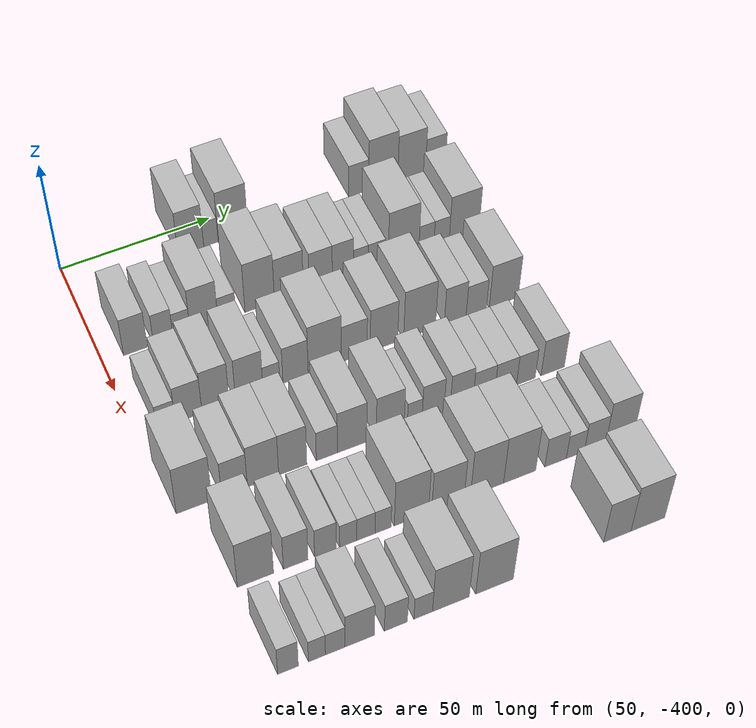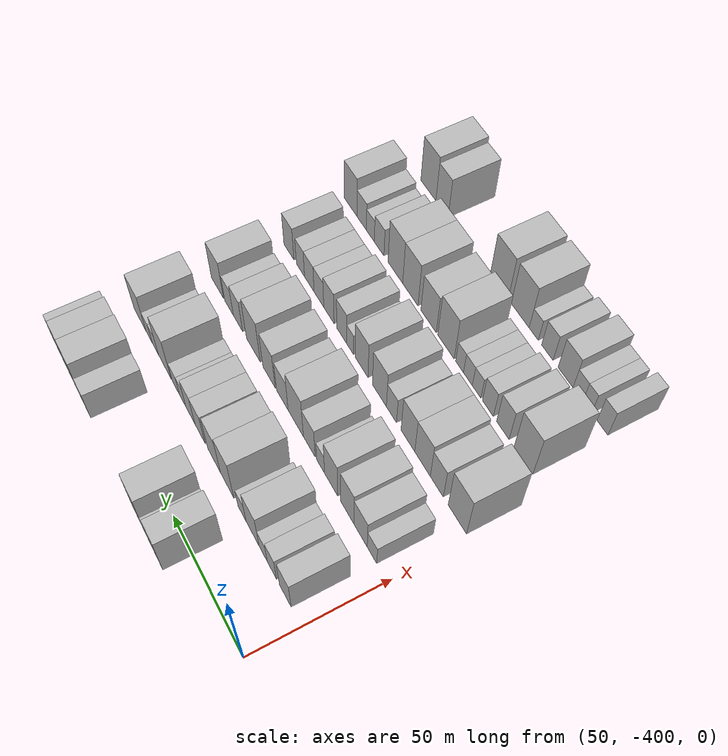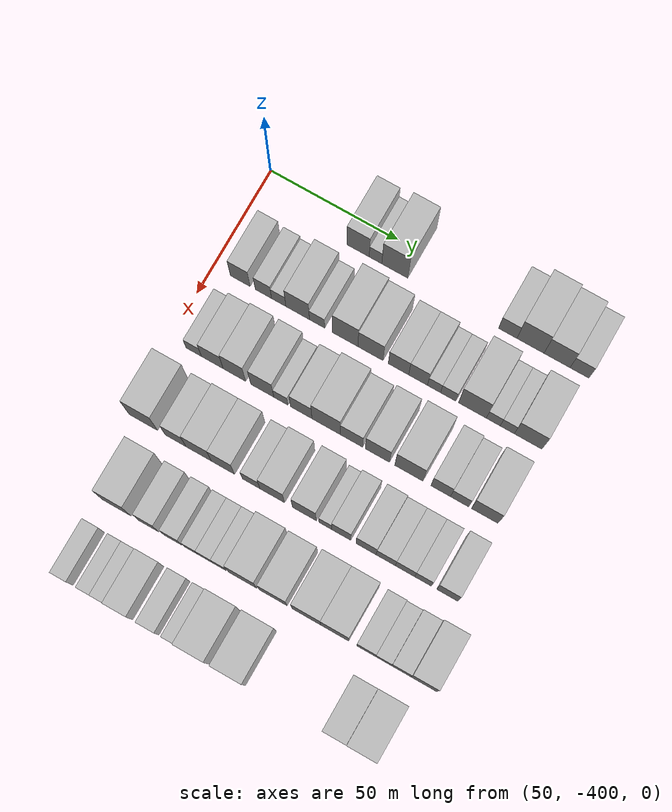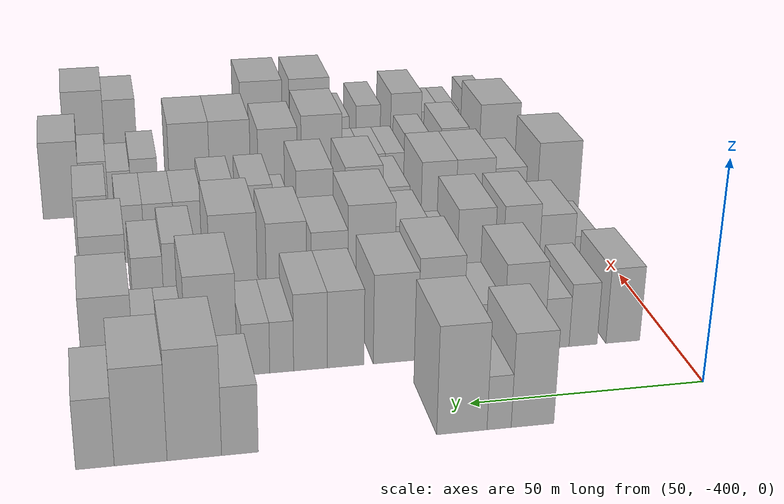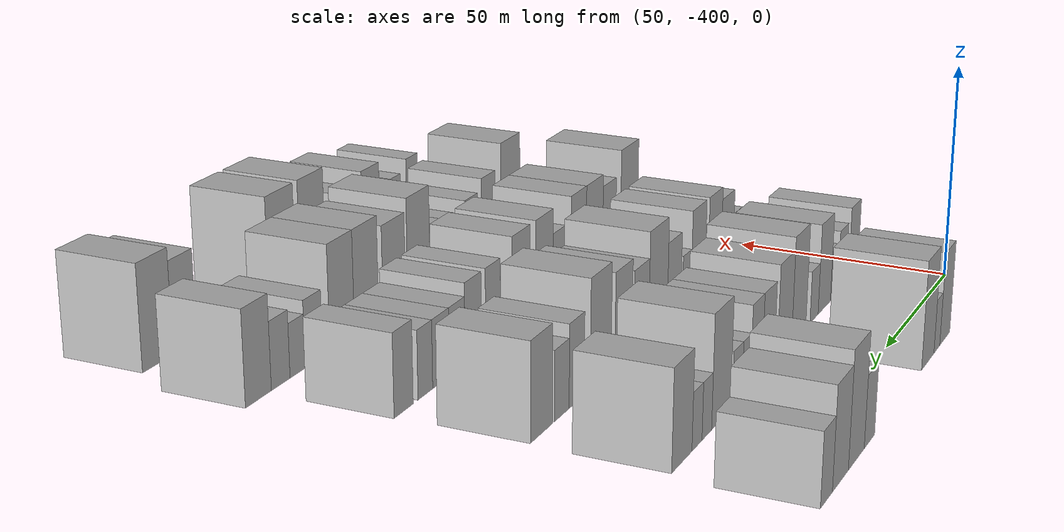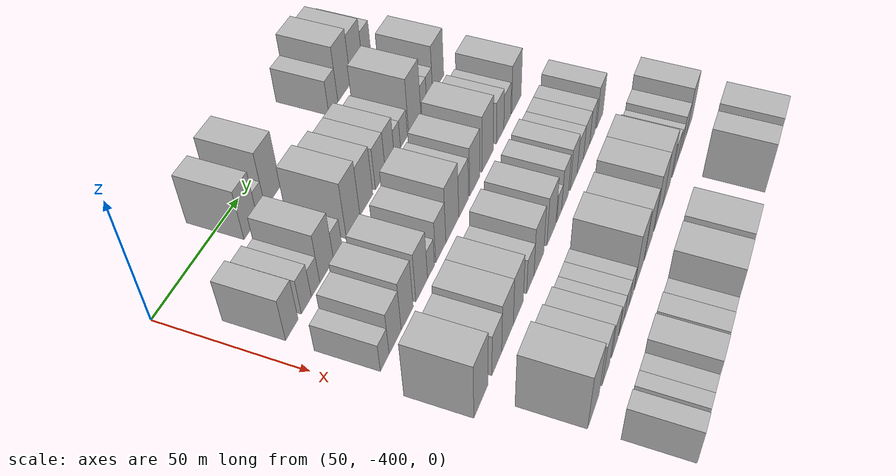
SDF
<sdf version="1.6">
 <world name="default">
  <model name="building_10">
   <static>1</static>
   <pose>50.0000 -360.0876 0 0.000000 0.000000 0.000000</pose>
   <link name="link">
    <pose>0 0 10.50 0 0 0</pose>
    <collision name="collision"><geometry><box><size>20.0000 8.7197 21.0000</size></box></geometry></collision>
    <visual name="visual">
     <cast_shadows>0</cast_shadows>
     <geometry><box><size>20.0000 8.7197 21.0000</size></box></geometry>
     <material>
      <script>
       <uri>model://HANNAS_wall/materials/scripts</uri>
       <uri>model://HANNAS_wall/materials/textures</uri>
       <name>vrc/HANNAS_wall</name>
      </script>
     </material>
    </visual>
   </link>
  </model>
  <model name="building_11">
   <static>1</static>
   <pose>50.0000 -353.2707 0 0.000000 0.000000 0.000000</pose>
   <link name="link">
    <pose>0 0 6.00 0 0 0</pose>
    <collision name="collision"><geometry><box><size>20.0000 4.9139 12.0000</size></box></geometry></collision>
    <visual name="visual">
     <cast_shadows>0</cast_shadows>
     <geometry><box><size>20.0000 4.9139 12.0000</size></box></geometry>
     <material>
      <script>
       <uri>model://HANNAS_wall/materials/scripts</uri>
       <uri>model://HANNAS_wall/materials/textures</uri>
       <name>vrc/HANNAS_wall</name>
      </script>
     </material>
    </visual>
   </link>
  </model>
  <model name="building_12">
   <static>1</static>
   <pose>50.0000 -345.7462 0 0.000000 0.000000 0.000000</pose>
   <link name="link">
    <pose>0 0 12.00 0 0 0</pose>
    <collision name="collision"><geometry><box><size>20.0000 10.1351 24.0000</size></box></geometry></collision>
    <visual name="visual">
     <cast_shadows>0</cast_shadows>
     <geometry><box><size>20.0000 10.1351 24.0000</size></box></geometry>
     <material>
      <script>
       <uri>model://HANNAS_wall/materials/scripts</uri>
       <uri>model://HANNAS_wall/materials/textures</uri>
       <name>vrc/HANNAS_wall</name>
      </script>
     </material>
    </visual>
   </link>
  </model>
  <model name="building_13">
   <static>1</static>
   <pose>50.0000 -302.0954 0 0.000000 0.000000 0.000000</pose>
   <link name="link">
    <pose>0 0 7.50 0 0 0</pose>
    <collision name="collision"><geometry><box><size>20.0000 7.0555 15.0000</size></box></geometry></collision>
    <visual name="visual">
     <cast_shadows>0</cast_shadows>
     <geometry><box><size>20.0000 7.0555 15.0000</size></box></geometry>
     <material>
      <script>
       <uri>model://HANNAS_wall/materials/scripts</uri>
       <uri>model://HANNAS_wall/materials/textures</uri>
       <name>vrc/HANNAS_wall</name>
      </script>
     </material>
    </visual>
   </link>
  </model>
  <model name="building_14">
   <static>1</static>
   <pose>50.0000 -293.3849 0 0.000000 0.000000 0.000000</pose>
   <link name="link">
    <pose>0 0 12.00 0 0 0</pose>
    <collision name="collision"><geometry><box><size>20.0000 10.3654 24.0000</size></box></geometry></collision>
    <visual name="visual">
     <cast_shadows>0</cast_shadows>
     <geometry><box><size>20.0000 10.3654 24.0000</size></box></geometry>
     <material>
      <script>
       <uri>model://HANNAS_wall/materials/scripts</uri>
       <uri>model://HANNAS_wall/materials/textures</uri>
       <name>vrc/HANNAS_wall</name>
      </script>
     </material>
    </visual>
   </link>
  </model>
  <model name="building_15">
   <static>1</static>
   <pose>50.0000 -283.2287 0 0.000000 0.000000 0.000000</pose>
   <link name="link">
    <pose>0 0 10.50 0 0 0</pose>
    <collision name="collision"><geometry><box><size>20.0000 9.9471 21.0000</size></box></geometry></collision>
    <visual name="visual">
     <cast_shadows>0</cast_shadows>
     <geometry><box><size>20.0000 9.9471 21.0000</size></box></geometry>
     <material>
      <script>
       <uri>model://HANNAS_wall/materials/scripts</uri>
       <uri>model://HANNAS_wall/materials/textures</uri>
       <name>vrc/HANNAS_wall</name>
      </script>
     </material>
    </visual>
   </link>
  </model>
  <model name="building_16">
   <static>1</static>
   <pose>50.0000 -274.6540 0 0.000000 0.000000 0.000000</pose>
   <link name="link">
    <pose>0 0 7.50 0 0 0</pose>
    <collision name="collision"><geometry><box><size>20.0000 7.2023 15.0000</size></box></geometry></collision>
    <visual name="visual">
     <cast_shadows>0</cast_shadows>
     <geometry><box><size>20.0000 7.2023 15.0000</size></box></geometry>
     <material>
      <script>
       <uri>model://HANNAS_wall/materials/scripts</uri>
       <uri>model://HANNAS_wall/materials/textures</uri>
       <name>vrc/HANNAS_wall</name>
      </script>
     </material>
    </visual>
   </link>
  </model>
  <model name="building_108">
   <static>1</static>
   <pose>79.0000 -389.3710 0 0.000000 0.000000 0.000000</pose>
   <link name="link">
    <pose>0 0 9.00 0 0 0</pose>
    <collision name="collision"><geometry><box><size>20.0000 7.7183 18.0000</size></box></geometry></collision>
    <visual name="visual">
     <cast_shadows>0</cast_shadows>
     <geometry><box><size>20.0000 7.7183 18.0000</size></box></geometry>
     <material>
      <script>
       <uri>model://HANNAS_wall/materials/scripts</uri>
       <uri>model://HANNAS_wall/materials/textures</uri>
       <name>vrc/HANNAS_wall</name>
      </script>
     </material>
    </visual>
   </link>
  </model>
  <model name="building_109">
   <static>1</static>
   <pose>79.0000 -380.3362 0 0.000000 0.000000 0.000000</pose>
   <link name="link">
    <pose>0 0 7.50 0 0 0</pose>
    <collision name="collision"><geometry><box><size>20.0000 6.3512 15.0000</size></box></geometry></collision>
    <visual name="visual">
     <cast_shadows>0</cast_shadows>
     <geometry><box><size>20.0000 6.3512 15.0000</size></box></geometry>
     <material>
      <script>
       <uri>model://HANNAS_wall/materials/scripts</uri>
       <uri>model://HANNAS_wall/materials/textures</uri>
       <name>vrc/HANNAS_wall</name>
      </script>
     </material>
    </visual>
   </link>
  </model>
  <model name="building_110">
   <static>1</static>
   <pose>79.0000 -374.3742 0 0.000000 0.000000 0.000000</pose>
   <link name="link">
    <pose>0 0 6.00 0 0 0</pose>
    <collision name="collision"><geometry><box><size>20.0000 5.5727 12.0000</size></box></geometry></collision>
    <visual name="visual">
     <cast_shadows>0</cast_shadows>
     <geometry><box><size>20.0000 5.5727 12.0000</size></box></geometry>
     <material>
      <script>
       <uri>model://HANNAS_wall/materials/scripts</uri>
       <uri>model://HANNAS_wall/materials/textures</uri>
       <name>vrc/HANNAS_wall</name>
      </script>
     </material>
    </visual>
   </link>
  </model>
  <model name="building_111">
   <static>1</static>
   <pose>79.0000 -366.9922 0 0.000000 0.000000 0.000000</pose>
   <link name="link">
    <pose>0 0 10.50 0 0 0</pose>
    <collision name="collision"><geometry><box><size>20.0000 9.1913 21.0000</size></box></geometry></collision>
    <visual name="visual">
     <cast_shadows>0</cast_shadows>
     <geometry><box><size>20.0000 9.1913 21.0000</size></box></geometry>
     <material>
      <script>
       <uri>model://HANNAS_wall/materials/scripts</uri>
       <uri>model://HANNAS_wall/materials/textures</uri>
       <name>vrc/HANNAS_wall</name>
      </script>
     </material>
    </visual>
   </link>
  </model>
  <model name="building_112">
   <static>1</static>
   <pose>79.0000 -359.4366 0 0.000000 0.000000 0.000000</pose>
   <link name="link">
    <pose>0 0 6.00 0 0 0</pose>
    <collision name="collision"><geometry><box><size>20.0000 5.9201 12.0000</size></box></geometry></collision>
    <visual name="visual">
     <cast_shadows>0</cast_shadows>
     <geometry><box><size>20.0000 5.9201 12.0000</size></box></geometry>
     <material>
      <script>
       <uri>model://HANNAS_wall/materials/scripts</uri>
       <uri>model://HANNAS_wall/materials/textures</uri>
       <name>vrc/HANNAS_wall</name>
      </script>
     </material>
    </visual>
   </link>
  </model>
  <model name="building_113">
   <static>1</static>
   <pose>79.0000 -348.5449 0 0.000000 0.000000 0.000000</pose>
   <link name="link">
    <pose>0 0 12.00 0 0 0</pose>
    <collision name="collision"><geometry><box><size>20.0000 9.8631 24.0000</size></box></geometry></collision>
    <visual name="visual">
     <cast_shadows>0</cast_shadows>
     <geometry><box><size>20.0000 9.8631 24.0000</size></box></geometry>
     <material>
      <script>
       <uri>model://HANNAS_wall/materials/scripts</uri>
       <uri>model://HANNAS_wall/materials/textures</uri>
       <name>vrc/HANNAS_wall</name>
      </script>
     </material>
    </visual>
   </link>
  </model>
  <model name="building_114">
   <static>1</static>
   <pose>79.0000 -338.7655 0 0.000000 0.000000 0.000000</pose>
   <link name="link">
    <pose>0 0 10.50 0 0 0</pose>
    <collision name="collision"><geometry><box><size>20.0000 9.6957 21.0000</size></box></geometry></collision>
    <visual name="visual">
     <cast_shadows>0</cast_shadows>
     <geometry><box><size>20.0000 9.6957 21.0000</size></box></geometry>
     <material>
      <script>
       <uri>model://HANNAS_wall/materials/scripts</uri>
       <uri>model://HANNAS_wall/materials/textures</uri>
       <name>vrc/HANNAS_wall</name>
      </script>
     </material>
    </visual>
   </link>
  </model>
  <model name="building_115">
   <static>1</static>
   <pose>79.0000 -327.9931 0 0.000000 0.000000 0.000000</pose>
   <link name="link">
    <pose>0 0 9.00 0 0 0</pose>
    <collision name="collision"><geometry><box><size>20.0000 7.8491 18.0000</size></box></geometry></collision>
    <visual name="visual">
     <cast_shadows>0</cast_shadows>
     <geometry><box><size>20.0000 7.8491 18.0000</size></box></geometry>
     <material>
      <script>
       <uri>model://HANNAS_wall/materials/scripts</uri>
       <uri>model://HANNAS_wall/materials/textures</uri>
       <name>vrc/HANNAS_wall</name>
      </script>
     </material>
    </visual>
   </link>
  </model>
  <model name="building_116">
   <static>1</static>
   <pose>79.0000 -320.4559 0 0.000000 0.000000 0.000000</pose>
   <link name="link">
    <pose>0 0 9.00 0 0 0</pose>
    <collision name="collision"><geometry><box><size>20.0000 7.2254 18.0000</size></box></geometry></collision>
    <visual name="visual">
     <cast_shadows>0</cast_shadows>
     <geometry><box><size>20.0000 7.2254 18.0000</size></box></geometry>
     <material>
      <script>
       <uri>model://HANNAS_wall/materials/scripts</uri>
       <uri>model://HANNAS_wall/materials/textures</uri>
       <name>vrc/HANNAS_wall</name>
      </script>
     </material>
    </visual>
   </link>
  </model>
  <model name="building_117">
   <static>1</static>
   <pose>79.0000 -314.3213 0 0.000000 0.000000 0.000000</pose>
   <link name="link">
    <pose>0 0 6.00 0 0 0</pose>
    <collision name="collision"><geometry><box><size>20.0000 5.0439 12.0000</size></box></geometry></collision>
    <visual name="visual">
     <cast_shadows>0</cast_shadows>
     <geometry><box><size>20.0000 5.0439 12.0000</size></box></geometry>
     <material>
      <script>
       <uri>model://HANNAS_wall/materials/scripts</uri>
       <uri>model://HANNAS_wall/materials/textures</uri>
       <name>vrc/HANNAS_wall</name>
      </script>
     </material>
    </visual>
   </link>
  </model>
  <model name="building_118">
   <static>1</static>
   <pose>79.0000 -308.8775 0 0.000000 0.000000 0.000000</pose>
   <link name="link">
    <pose>0 0 6.00 0 0 0</pose>
    <collision name="collision"><geometry><box><size>20.0000 5.8438 12.0000</size></box></geometry></collision>
    <visual name="visual">
     <cast_shadows>0</cast_shadows>
     <geometry><box><size>20.0000 5.8438 12.0000</size></box></geometry>
     <material>
      <script>
       <uri>model://HANNAS_wall/materials/scripts</uri>
       <uri>model://HANNAS_wall/materials/textures</uri>
       <name>vrc/HANNAS_wall</name>
      </script>
     </material>
    </visual>
   </link>
  </model>
  <model name="building_119">
   <static>1</static>
   <pose>79.0000 -299.6308 0 0.000000 0.000000 0.000000</pose>
   <link name="link">
    <pose>0 0 12.00 0 0 0</pose>
    <collision name="collision"><geometry><box><size>20.0000 10.6496 24.0000</size></box></geometry></collision>
    <visual name="visual">
     <cast_shadows>0</cast_shadows>
     <geometry><box><size>20.0000 10.6496 24.0000</size></box></geometry>
     <material>
      <script>
       <uri>model://HANNAS_wall/materials/scripts</uri>
       <uri>model://HANNAS_wall/materials/textures</uri>
       <name>vrc/HANNAS_wall</name>
      </script>
     </material>
    </visual>
   </link>
  </model>
  <model name="building_120">
   <static>1</static>
   <pose>79.0000 -291.6665 0 0.000000 0.000000 0.000000</pose>
   <link name="link">
    <pose>0 0 6.00 0 0 0</pose>
    <collision name="collision"><geometry><box><size>20.0000 5.2791 12.0000</size></box></geometry></collision>
    <visual name="visual">
     <cast_shadows>0</cast_shadows>
     <geometry><box><size>20.0000 5.2791 12.0000</size></box></geometry>
     <material>
      <script>
       <uri>model://HANNAS_wall/materials/scripts</uri>
       <uri>model://HANNAS_wall/materials/textures</uri>
       <name>vrc/HANNAS_wall</name>
      </script>
     </material>
    </visual>
   </link>
  </model>
  <model name="building_121">
   <static>1</static>
   <pose>79.0000 -286.3384 0 0.000000 0.000000 0.000000</pose>
   <link name="link">
    <pose>0 0 6.00 0 0 0</pose>
    <collision name="collision"><geometry><box><size>20.0000 5.3769 12.0000</size></box></geometry></collision>
    <visual name="visual">
     <cast_shadows>0</cast_shadows>
     <geometry><box><size>20.0000 5.3769 12.0000</size></box></geometry>
     <material>
      <script>
       <uri>model://HANNAS_wall/materials/scripts</uri>
       <uri>model://HANNAS_wall/materials/textures</uri>
       <name>vrc/HANNAS_wall</name>
      </script>
     </material>
    </visual>
   </link>
  </model>
  <model name="building_122">
   <static>1</static>
   <pose>79.0000 -278.4130 0 0.000000 0.000000 0.000000</pose>
   <link name="link">
    <pose>0 0 10.50 0 0 0</pose>
    <collision name="collision"><geometry><box><size>20.0000 10.4740 21.0000</size></box></geometry></collision>
    <visual name="visual">
     <cast_shadows>0</cast_shadows>
     <geometry><box><size>20.0000 10.4740 21.0000</size></box></geometry>
     <material>
      <script>
       <uri>model://HANNAS_wall/materials/scripts</uri>
       <uri>model://HANNAS_wall/materials/textures</uri>
       <name>vrc/HANNAS_wall</name>
      </script>
     </material>
    </visual>
   </link>
  </model>
  <model name="building_225">
   <static>1</static>
   <pose>108.0000 -390.5044 0 0.000000 0.000000 0.000000</pose>
   <link name="link">
    <pose>0 0 6.00 0 0 0</pose>
    <collision name="collision"><geometry><box><size>20.0000 5.9755 12.0000</size></box></geometry></collision>
    <visual name="visual">
     <cast_shadows>0</cast_shadows>
     <geometry><box><size>20.0000 5.9755 12.0000</size></box></geometry>
     <material>
      <script>
       <uri>model://HANNAS_wall/materials/scripts</uri>
       <uri>model://HANNAS_wall/materials/textures</uri>
       <name>vrc/HANNAS_wall</name>
      </script>
     </material>
    </visual>
   </link>
  </model>
  <model name="building_226">
   <static>1</static>
   <pose>108.0000 -383.2787 0 0.000000 0.000000 0.000000</pose>
   <link name="link">
    <pose>0 0 9.00 0 0 0</pose>
    <collision name="collision"><geometry><box><size>20.0000 8.4758 18.0000</size></box></geometry></collision>
    <visual name="visual">
     <cast_shadows>0</cast_shadows>
     <geometry><box><size>20.0000 8.4758 18.0000</size></box></geometry>
     <material>
      <script>
       <uri>model://HANNAS_wall/materials/scripts</uri>
       <uri>model://HANNAS_wall/materials/textures</uri>
       <name>vrc/HANNAS_wall</name>
      </script>
     </material>
    </visual>
   </link>
  </model>
  <model name="building_227">
   <static>1</static>
   <pose>108.0000 -374.6864 0 0.000000 0.000000 0.000000</pose>
   <link name="link">
    <pose>0 0 10.50 0 0 0</pose>
    <collision name="collision"><geometry><box><size>20.0000 8.7089 21.0000</size></box></geometry></collision>
    <visual name="visual">
     <cast_shadows>0</cast_shadows>
     <geometry><box><size>20.0000 8.7089 21.0000</size></box></geometry>
     <material>
      <script>
       <uri>model://HANNAS_wall/materials/scripts</uri>
       <uri>model://HANNAS_wall/materials/textures</uri>
       <name>vrc/HANNAS_wall</name>
      </script>
     </material>
    </visual>
   </link>
  </model>
  <model name="building_228">
   <static>1</static>
   <pose>108.0000 -363.8888 0 0.000000 0.000000 0.000000</pose>
   <link name="link">
    <pose>0 0 10.50 0 0 0</pose>
    <collision name="collision"><geometry><box><size>20.0000 8.8863 21.0000</size></box></geometry></collision>
    <visual name="visual">
     <cast_shadows>0</cast_shadows>
     <geometry><box><size>20.0000 8.8863 21.0000</size></box></geometry>
     <material>
      <script>
       <uri>model://HANNAS_wall/materials/scripts</uri>
       <uri>model://HANNAS_wall/materials/textures</uri>
       <name>vrc/HANNAS_wall</name>
      </script>
     </material>
    </visual>
   </link>
  </model>
  <model name="building_229">
   <static>1</static>
   <pose>108.0000 -356.7248 0 0.000000 0.000000 0.000000</pose>
   <link name="link">
    <pose>0 0 6.00 0 0 0</pose>
    <collision name="collision"><geometry><box><size>20.0000 5.4416 12.0000</size></box></geometry></collision>
    <visual name="visual">
     <cast_shadows>0</cast_shadows>
     <geometry><box><size>20.0000 5.4416 12.0000</size></box></geometry>
     <material>
      <script>
       <uri>model://HANNAS_wall/materials/scripts</uri>
       <uri>model://HANNAS_wall/materials/textures</uri>
       <name>vrc/HANNAS_wall</name>
      </script>
     </material>
    </visual>
   </link>
  </model>
  <model name="building_230">
   <static>1</static>
   <pose>108.0000 -348.8827 0 0.000000 0.000000 0.000000</pose>
   <link name="link">
    <pose>0 0 9.00 0 0 0</pose>
    <collision name="collision"><geometry><box><size>20.0000 8.2425 18.0000</size></box></geometry></collision>
    <visual name="visual">
     <cast_shadows>0</cast_shadows>
     <geometry><box><size>20.0000 8.2425 18.0000</size></box></geometry>
     <material>
      <script>
       <uri>model://HANNAS_wall/materials/scripts</uri>
       <uri>model://HANNAS_wall/materials/textures</uri>
       <name>vrc/HANNAS_wall</name>
      </script>
     </material>
    </visual>
   </link>
  </model>
  <model name="building_231">
   <static>1</static>
   <pose>108.0000 -339.3046 0 0.000000 0.000000 0.000000</pose>
   <link name="link">
    <pose>0 0 12.00 0 0 0</pose>
    <collision name="collision"><geometry><box><size>20.0000 10.9139 24.0000</size></box></geometry></collision>
    <visual name="visual">
     <cast_shadows>0</cast_shadows>
     <geometry><box><size>20.0000 10.9139 24.0000</size></box></geometry>
     <material>
      <script>
       <uri>model://HANNAS_wall/materials/scripts</uri>
       <uri>model://HANNAS_wall/materials/textures</uri>
       <name>vrc/HANNAS_wall</name>
      </script>
     </material>
    </visual>
   </link>
  </model>
  <model name="building_232">
   <static>1</static>
   <pose>108.0000 -329.5757 0 0.000000 0.000000 0.000000</pose>
   <link name="link">
    <pose>0 0 9.00 0 0 0</pose>
    <collision name="collision"><geometry><box><size>20.0000 8.5439 18.0000</size></box></geometry></collision>
    <visual name="visual">
     <cast_shadows>0</cast_shadows>
     <geometry><box><size>20.0000 8.5439 18.0000</size></box></geometry>
     <material>
      <script>
       <uri>model://HANNAS_wall/materials/scripts</uri>
       <uri>model://HANNAS_wall/materials/textures</uri>
       <name>vrc/HANNAS_wall</name>
      </script>
     </material>
    </visual>
   </link>
  </model>
  <model name="building_233">
   <static>1</static>
   <pose>108.0000 -319.6823 0 0.000000 0.000000 0.000000</pose>
   <link name="link">
    <pose>0 0 10.50 0 0 0</pose>
    <collision name="collision"><geometry><box><size>20.0000 9.2429 21.0000</size></box></geometry></collision>
    <visual name="visual">
     <cast_shadows>0</cast_shadows>
     <geometry><box><size>20.0000 9.2429 21.0000</size></box></geometry>
     <material>
      <script>
       <uri>model://HANNAS_wall/materials/scripts</uri>
       <uri>model://HANNAS_wall/materials/textures</uri>
       <name>vrc/HANNAS_wall</name>
      </script>
     </material>
    </visual>
   </link>
  </model>
  <model name="building_234">
   <static>1</static>
   <pose>108.0000 -307.6823 0 0.000000 0.000000 0.000000</pose>
   <link name="link">
    <pose>0 0 12.00 0 0 0</pose>
    <collision name="collision"><geometry><box><size>20.0000 10.7571 24.0000</size></box></geometry></collision>
    <visual name="visual">
     <cast_shadows>0</cast_shadows>
     <geometry><box><size>20.0000 10.7571 24.0000</size></box></geometry>
     <material>
      <script>
       <uri>model://HANNAS_wall/materials/scripts</uri>
       <uri>model://HANNAS_wall/materials/textures</uri>
       <name>vrc/HANNAS_wall</name>
      </script>
     </material>
    </visual>
   </link>
  </model>
  <model name="building_235">
   <static>1</static>
   <pose>108.0000 -295.5895 0 0.000000 0.000000 0.000000</pose>
   <link name="link">
    <pose>0 0 9.00 0 0 0</pose>
    <collision name="collision"><geometry><box><size>20.0000 7.4287 18.0000</size></box></geometry></collision>
    <visual name="visual">
     <cast_shadows>0</cast_shadows>
     <geometry><box><size>20.0000 7.4287 18.0000</size></box></geometry>
     <material>
      <script>
       <uri>model://HANNAS_wall/materials/scripts</uri>
       <uri>model://HANNAS_wall/materials/textures</uri>
       <name>vrc/HANNAS_wall</name>
      </script>
     </material>
    </visual>
   </link>
  </model>
  <model name="building_236">
   <static>1</static>
   <pose>108.0000 -288.4044 0 0.000000 0.000000 0.000000</pose>
   <link name="link">
    <pose>0 0 7.50 0 0 0</pose>
    <collision name="collision"><geometry><box><size>20.0000 6.9413 15.0000</size></box></geometry></collision>
    <visual name="visual">
     <cast_shadows>0</cast_shadows>
     <geometry><box><size>20.0000 6.9413 15.0000</size></box></geometry>
     <material>
      <script>
       <uri>model://HANNAS_wall/materials/scripts</uri>
       <uri>model://HANNAS_wall/materials/textures</uri>
       <name>vrc/HANNAS_wall</name>
      </script>
     </material>
    </visual>
   </link>
  </model>
  <model name="building_237">
   <static>1</static>
   <pose>108.0000 -278.9321 0 0.000000 0.000000 0.000000</pose>
   <link name="link">
    <pose>0 0 10.50 0 0 0</pose>
    <collision name="collision"><geometry><box><size>20.0000 10.0034 21.0000</size></box></geometry></collision>
    <visual name="visual">
     <cast_shadows>0</cast_shadows>
     <geometry><box><size>20.0000 10.0034 21.0000</size></box></geometry>
     <material>
      <script>
       <uri>model://HANNAS_wall/materials/scripts</uri>
       <uri>model://HANNAS_wall/materials/textures</uri>
       <name>vrc/HANNAS_wall</name>
      </script>
     </material>
    </visual>
   </link>
  </model>
  <model name="building_335">
   <static>1</static>
   <pose>137.0000 -392.8796 0 0.000000 0.000000 0.000000</pose>
   <link name="link">
    <pose>0 0 12.00 0 0 0</pose>
    <collision name="collision"><geometry><box><size>20.0000 11.0079 24.0000</size></box></geometry></collision>
    <visual name="visual">
     <cast_shadows>0</cast_shadows>
     <geometry><box><size>20.0000 11.0079 24.0000</size></box></geometry>
     <material>
      <script>
       <uri>model://HANNAS_wall/materials/scripts</uri>
       <uri>model://HANNAS_wall/materials/textures</uri>
       <name>vrc/HANNAS_wall</name>
      </script>
     </material>
    </visual>
   </link>
  </model>
  <model name="building_336">
   <static>1</static>
   <pose>137.0000 -380.3613 0 0.000000 0.000000 0.000000</pose>
   <link name="link">
    <pose>0 0 9.00 0 0 0</pose>
    <collision name="collision"><geometry><box><size>20.0000 8.0287 18.0000</size></box></geometry></collision>
    <visual name="visual">
     <cast_shadows>0</cast_shadows>
     <geometry><box><size>20.0000 8.0287 18.0000</size></box></geometry>
     <material>
      <script>
       <uri>model://HANNAS_wall/materials/scripts</uri>
       <uri>model://HANNAS_wall/materials/textures</uri>
       <name>vrc/HANNAS_wall</name>
      </script>
     </material>
    </visual>
   </link>
  </model>
  <model name="building_337">
   <static>1</static>
   <pose>137.0000 -371.4375 0 0.000000 0.000000 0.000000</pose>
   <link name="link">
    <pose>0 0 10.50 0 0 0</pose>
    <collision name="collision"><geometry><box><size>20.0000 9.8189 21.0000</size></box></geometry></collision>
    <visual name="visual">
     <cast_shadows>0</cast_shadows>
     <geometry><box><size>20.0000 9.8189 21.0000</size></box></geometry>
     <material>
      <script>
       <uri>model://HANNAS_wall/materials/scripts</uri>
       <uri>model://HANNAS_wall/materials/textures</uri>
       <name>vrc/HANNAS_wall</name>
      </script>
     </material>
    </visual>
   </link>
  </model>
  <model name="building_338">
   <static>1</static>
   <pose>137.0000 -362.0858 0 0.000000 0.000000 0.000000</pose>
   <link name="link">
    <pose>0 0 10.50 0 0 0</pose>
    <collision name="collision"><geometry><box><size>20.0000 8.8845 21.0000</size></box></geometry></collision>
    <visual name="visual">
     <cast_shadows>0</cast_shadows>
     <geometry><box><size>20.0000 8.8845 21.0000</size></box></geometry>
     <material>
      <script>
       <uri>model://HANNAS_wall/materials/scripts</uri>
       <uri>model://HANNAS_wall/materials/textures</uri>
       <name>vrc/HANNAS_wall</name>
      </script>
     </material>
    </visual>
   </link>
  </model>
  <model name="building_339">
   <static>1</static>
   <pose>137.0000 -351.2764 0 0.000000 0.000000 0.000000</pose>
   <link name="link">
    <pose>0 0 7.50 0 0 0</pose>
    <collision name="collision"><geometry><box><size>20.0000 6.7343 15.0000</size></box></geometry></collision>
    <visual name="visual">
     <cast_shadows>0</cast_shadows>
     <geometry><box><size>20.0000 6.7343 15.0000</size></box></geometry>
     <material>
      <script>
       <uri>model://HANNAS_wall/materials/scripts</uri>
       <uri>model://HANNAS_wall/materials/textures</uri>
       <name>vrc/HANNAS_wall</name>
      </script>
     </material>
    </visual>
   </link>
  </model>
  <model name="building_340">
   <static>1</static>
   <pose>137.0000 -343.1933 0 0.000000 0.000000 0.000000</pose>
   <link name="link">
    <pose>0 0 10.50 0 0 0</pose>
    <collision name="collision"><geometry><box><size>20.0000 9.4319 21.0000</size></box></geometry></collision>
    <visual name="visual">
     <cast_shadows>0</cast_shadows>
     <geometry><box><size>20.0000 9.4319 21.0000</size></box></geometry>
     <material>
      <script>
       <uri>model://HANNAS_wall/materials/scripts</uri>
       <uri>model://HANNAS_wall/materials/textures</uri>
       <name>vrc/HANNAS_wall</name>
      </script>
     </material>
    </visual>
   </link>
  </model>
  <model name="building_341">
   <static>1</static>
   <pose>137.0000 -330.9318 0 0.000000 0.000000 0.000000</pose>
   <link name="link">
    <pose>0 0 10.50 0 0 0</pose>
    <collision name="collision"><geometry><box><size>20.0000 9.0911 21.0000</size></box></geometry></collision>
    <visual name="visual">
     <cast_shadows>0</cast_shadows>
     <geometry><box><size>20.0000 9.0911 21.0000</size></box></geometry>
     <material>
      <script>
       <uri>model://HANNAS_wall/materials/scripts</uri>
       <uri>model://HANNAS_wall/materials/textures</uri>
       <name>vrc/HANNAS_wall</name>
      </script>
     </material>
    </visual>
   </link>
  </model>
  <model name="building_342">
   <static>1</static>
   <pose>137.0000 -322.9700 0 0.000000 0.000000 0.000000</pose>
   <link name="link">
    <pose>0 0 6.00 0 0 0</pose>
    <collision name="collision"><geometry><box><size>20.0000 4.8326 12.0000</size></box></geometry></collision>
    <visual name="visual">
     <cast_shadows>0</cast_shadows>
     <geometry><box><size>20.0000 4.8326 12.0000</size></box></geometry>
     <material>
      <script>
       <uri>model://HANNAS_wall/materials/scripts</uri>
       <uri>model://HANNAS_wall/materials/textures</uri>
       <name>vrc/HANNAS_wall</name>
      </script>
     </material>
    </visual>
   </link>
  </model>
  <model name="building_343">
   <static>1</static>
   <pose>137.0000 -316.9395 0 0.000000 0.000000 0.000000</pose>
   <link name="link">
    <pose>0 0 9.00 0 0 0</pose>
    <collision name="collision"><geometry><box><size>20.0000 7.2285 18.0000</size></box></geometry></collision>
    <visual name="visual">
     <cast_shadows>0</cast_shadows>
     <geometry><box><size>20.0000 7.2285 18.0000</size></box></geometry>
     <material>
      <script>
       <uri>model://HANNAS_wall/materials/scripts</uri>
       <uri>model://HANNAS_wall/materials/textures</uri>
       <name>vrc/HANNAS_wall</name>
      </script>
     </material>
    </visual>
   </link>
  </model>
  <model name="building_344">
   <static>1</static>
   <pose>137.0000 -307.5118 0 0.000000 0.000000 0.000000</pose>
   <link name="link">
    <pose>0 0 9.00 0 0 0</pose>
    <collision name="collision"><geometry><box><size>20.0000 7.6268 18.0000</size></box></geometry></collision>
    <visual name="visual">
     <cast_shadows>0</cast_shadows>
     <geometry><box><size>20.0000 7.6268 18.0000</size></box></geometry>
     <material>
      <script>
       <uri>model://HANNAS_wall/materials/scripts</uri>
       <uri>model://HANNAS_wall/materials/textures</uri>
       <name>vrc/HANNAS_wall</name>
      </script>
     </material>
    </visual>
   </link>
  </model>
  <model name="building_345">
   <static>1</static>
   <pose>137.0000 -300.0791 0 0.000000 0.000000 0.000000</pose>
   <link name="link">
    <pose>0 0 7.50 0 0 0</pose>
    <collision name="collision"><geometry><box><size>20.0000 7.2385 15.0000</size></box></geometry></collision>
    <visual name="visual">
     <cast_shadows>0</cast_shadows>
     <geometry><box><size>20.0000 7.2385 15.0000</size></box></geometry>
     <material>
      <script>
       <uri>model://HANNAS_wall/materials/scripts</uri>
       <uri>model://HANNAS_wall/materials/textures</uri>
       <name>vrc/HANNAS_wall</name>
      </script>
     </material>
    </visual>
   </link>
  </model>
  <model name="building_346">
   <static>1</static>
   <pose>137.0000 -292.8246 0 0.000000 0.000000 0.000000</pose>
   <link name="link">
    <pose>0 0 7.50 0 0 0</pose>
    <collision name="collision"><geometry><box><size>20.0000 7.2705 15.0000</size></box></geometry></collision>
    <visual name="visual">
     <cast_shadows>0</cast_shadows>
     <geometry><box><size>20.0000 7.2705 15.0000</size></box></geometry>
     <material>
      <script>
       <uri>model://HANNAS_wall/materials/scripts</uri>
       <uri>model://HANNAS_wall/materials/textures</uri>
       <name>vrc/HANNAS_wall</name>
      </script>
     </material>
    </visual>
   </link>
  </model>
  <model name="building_347">
   <static>1</static>
   <pose>137.0000 -286.0482 0 0.000000 0.000000 0.000000</pose>
   <link name="link">
    <pose>0 0 7.50 0 0 0</pose>
    <collision name="collision"><geometry><box><size>20.0000 6.2824 15.0000</size></box></geometry></collision>
    <visual name="visual">
     <cast_shadows>0</cast_shadows>
     <geometry><box><size>20.0000 6.2824 15.0000</size></box></geometry>
     <material>
      <script>
       <uri>model://HANNAS_wall/materials/scripts</uri>
       <uri>model://HANNAS_wall/materials/textures</uri>
       <name>vrc/HANNAS_wall</name>
      </script>
     </material>
    </visual>
   </link>
  </model>
  <model name="building_348">
   <static>1</static>
   <pose>137.0000 -276.9667 0 0.000000 0.000000 0.000000</pose>
   <link name="link">
    <pose>0 0 9.00 0 0 0</pose>
    <collision name="collision"><geometry><box><size>20.0000 7.8807 18.0000</size></box></geometry></collision>
    <visual name="visual">
     <cast_shadows>0</cast_shadows>
     <geometry><box><size>20.0000 7.8807 18.0000</size></box></geometry>
     <material>
      <script>
       <uri>model://HANNAS_wall/materials/scripts</uri>
       <uri>model://HANNAS_wall/materials/textures</uri>
       <name>vrc/HANNAS_wall</name>
      </script>
     </material>
    </visual>
   </link>
  </model>
  <model name="building_450">
   <static>1</static>
   <pose>166.0000 -385.7498 0 0.000000 0.000000 0.000000</pose>
   <link name="link">
    <pose>0 0 12.00 0 0 0</pose>
    <collision name="collision"><geometry><box><size>20.0000 10.9766 24.0000</size></box></geometry></collision>
    <visual name="visual">
     <cast_shadows>0</cast_shadows>
     <geometry><box><size>20.0000 10.9766 24.0000</size></box></geometry>
     <material>
      <script>
       <uri>model://HANNAS_wall/materials/scripts</uri>
       <uri>model://HANNAS_wall/materials/textures</uri>
       <name>vrc/HANNAS_wall</name>
      </script>
     </material>
    </visual>
   </link>
  </model>
  <model name="building_451">
   <static>1</static>
   <pose>166.0000 -373.4954 0 0.000000 0.000000 0.000000</pose>
   <link name="link">
    <pose>0 0 9.00 0 0 0</pose>
    <collision name="collision"><geometry><box><size>20.0000 7.5323 18.0000</size></box></geometry></collision>
    <visual name="visual">
     <cast_shadows>0</cast_shadows>
     <geometry><box><size>20.0000 7.5323 18.0000</size></box></geometry>
     <material>
      <script>
       <uri>model://HANNAS_wall/materials/scripts</uri>
       <uri>model://HANNAS_wall/materials/textures</uri>
       <name>vrc/HANNAS_wall</name>
      </script>
     </material>
    </visual>
   </link>
  </model>
  <model name="building_452">
   <static>1</static>
   <pose>166.0000 -364.3543 0 0.000000 0.000000 0.000000</pose>
   <link name="link">
    <pose>0 0 7.50 0 0 0</pose>
    <collision name="collision"><geometry><box><size>20.0000 6.7499 15.0000</size></box></geometry></collision>
    <visual name="visual">
     <cast_shadows>0</cast_shadows>
     <geometry><box><size>20.0000 6.7499 15.0000</size></box></geometry>
     <material>
      <script>
       <uri>model://HANNAS_wall/materials/scripts</uri>
       <uri>model://HANNAS_wall/materials/textures</uri>
       <name>vrc/HANNAS_wall</name>
      </script>
     </material>
    </visual>
   </link>
  </model>
  <model name="building_453">
   <static>1</static>
   <pose>166.0000 -357.3147 0 0.000000 0.000000 0.000000</pose>
   <link name="link">
    <pose>0 0 6.00 0 0 0</pose>
    <collision name="collision"><geometry><box><size>20.0000 5.3293 12.0000</size></box></geometry></collision>
    <visual name="visual">
     <cast_shadows>0</cast_shadows>
     <geometry><box><size>20.0000 5.3293 12.0000</size></box></geometry>
     <material>
      <script>
       <uri>model://HANNAS_wall/materials/scripts</uri>
       <uri>model://HANNAS_wall/materials/textures</uri>
       <name>vrc/HANNAS_wall</name>
      </script>
     </material>
    </visual>
   </link>
  </model>
  <model name="building_454">
   <static>1</static>
   <pose>166.0000 -351.8118 0 0.000000 0.000000 0.000000</pose>
   <link name="link">
    <pose>0 0 6.00 0 0 0</pose>
    <collision name="collision"><geometry><box><size>20.0000 5.6766 12.0000</size></box></geometry></collision>
    <visual name="visual">
     <cast_shadows>0</cast_shadows>
     <geometry><box><size>20.0000 5.6766 12.0000</size></box></geometry>
     <material>
      <script>
       <uri>model://HANNAS_wall/materials/scripts</uri>
       <uri>model://HANNAS_wall/materials/textures</uri>
       <name>vrc/HANNAS_wall</name>
      </script>
     </material>
    </visual>
   </link>
  </model>
  <model name="building_455">
   <static>1</static>
   <pose>166.0000 -346.4634 0 0.000000 0.000000 0.000000</pose>
   <link name="link">
    <pose>0 0 6.00 0 0 0</pose>
    <collision name="collision"><geometry><box><size>20.0000 5.0201 12.0000</size></box></geometry></collision>
    <visual name="visual">
     <cast_shadows>0</cast_shadows>
     <geometry><box><size>20.0000 5.0201 12.0000</size></box></geometry>
     <material>
      <script>
       <uri>model://HANNAS_wall/materials/scripts</uri>
       <uri>model://HANNAS_wall/materials/textures</uri>
       <name>vrc/HANNAS_wall</name>
      </script>
     </material>
    </visual>
   </link>
  </model>
  <model name="building_456">
   <static>1</static>
   <pose>166.0000 -337.5454 0 0.000000 0.000000 0.000000</pose>
   <link name="link">
    <pose>0 0 12.00 0 0 0</pose>
    <collision name="collision"><geometry><box><size>20.0000 10.8159 24.0000</size></box></geometry></collision>
    <visual name="visual">
     <cast_shadows>0</cast_shadows>
     <geometry><box><size>20.0000 10.8159 24.0000</size></box></geometry>
     <material>
      <script>
       <uri>model://HANNAS_wall/materials/scripts</uri>
       <uri>model://HANNAS_wall/materials/textures</uri>
       <name>vrc/HANNAS_wall</name>
      </script>
     </material>
    </visual>
   </link>
  </model>
  <model name="building_457">
   <static>1</static>
   <pose>166.0000 -325.9388 0 0.000000 0.000000 0.000000</pose>
   <link name="link">
    <pose>0 0 10.50 0 0 0</pose>
    <collision name="collision"><geometry><box><size>20.0000 10.3974 21.0000</size></box></geometry></collision>
    <visual name="visual">
     <cast_shadows>0</cast_shadows>
     <geometry><box><size>20.0000 10.3974 21.0000</size></box></geometry>
     <material>
      <script>
       <uri>model://HANNAS_wall/materials/scripts</uri>
       <uri>model://HANNAS_wall/materials/textures</uri>
       <name>vrc/HANNAS_wall</name>
      </script>
     </material>
    </visual>
   </link>
  </model>
  <model name="building_458">
   <static>1</static>
   <pose>166.0000 -313.3963 0 0.000000 0.000000 0.000000</pose>
   <link name="link">
    <pose>0 0 12.00 0 0 0</pose>
    <collision name="collision"><geometry><box><size>20.0000 10.6877 24.0000</size></box></geometry></collision>
    <visual name="visual">
     <cast_shadows>0</cast_shadows>
     <geometry><box><size>20.0000 10.6877 24.0000</size></box></geometry>
     <material>
      <script>
       <uri>model://HANNAS_wall/materials/scripts</uri>
       <uri>model://HANNAS_wall/materials/textures</uri>
       <name>vrc/HANNAS_wall</name>
      </script>
     </material>
    </visual>
   </link>
  </model>
  <model name="building_459">
   <static>1</static>
   <pose>166.0000 -302.8292 0 0.000000 0.000000 0.000000</pose>
   <link name="link">
    <pose>0 0 12.00 0 0 0</pose>
    <collision name="collision"><geometry><box><size>20.0000 10.4464 24.0000</size></box></geometry></collision>
    <visual name="visual">
     <cast_shadows>0</cast_shadows>
     <geometry><box><size>20.0000 10.4464 24.0000</size></box></geometry>
     <material>
      <script>
       <uri>model://HANNAS_wall/materials/scripts</uri>
       <uri>model://HANNAS_wall/materials/textures</uri>
       <name>vrc/HANNAS_wall</name>
      </script>
     </material>
    </visual>
   </link>
  </model>
  <model name="building_460">
   <static>1</static>
   <pose>166.0000 -291.0798 0 0.000000 0.000000 0.000000</pose>
   <link name="link">
    <pose>0 0 7.50 0 0 0</pose>
    <collision name="collision"><geometry><box><size>20.0000 7.0525 15.0000</size></box></geometry></collision>
    <visual name="visual">
     <cast_shadows>0</cast_shadows>
     <geometry><box><size>20.0000 7.0525 15.0000</size></box></geometry>
     <material>
      <script>
       <uri>model://HANNAS_wall/materials/scripts</uri>
       <uri>model://HANNAS_wall/materials/textures</uri>
       <name>vrc/HANNAS_wall</name>
      </script>
     </material>
    </visual>
   </link>
  </model>
  <model name="building_461">
   <static>1</static>
   <pose>166.0000 -284.5816 0 0.000000 0.000000 0.000000</pose>
   <link name="link">
    <pose>0 0 6.00 0 0 0</pose>
    <collision name="collision"><geometry><box><size>20.0000 5.9438 12.0000</size></box></geometry></collision>
    <visual name="visual">
     <cast_shadows>0</cast_shadows>
     <geometry><box><size>20.0000 5.9438 12.0000</size></box></geometry>
     <material>
      <script>
       <uri>model://HANNAS_wall/materials/scripts</uri>
       <uri>model://HANNAS_wall/materials/textures</uri>
       <name>vrc/HANNAS_wall</name>
      </script>
     </material>
    </visual>
   </link>
  </model>
  <model name="building_462">
   <static>1</static>
   <pose>166.0000 -278.0412 0 0.000000 0.000000 0.000000</pose>
   <link name="link">
    <pose>0 0 7.50 0 0 0</pose>
    <collision name="collision"><geometry><box><size>20.0000 7.1372 15.0000</size></box></geometry></collision>
    <visual name="visual">
     <cast_shadows>0</cast_shadows>
     <geometry><box><size>20.0000 7.1372 15.0000</size></box></geometry>
     <material>
      <script>
       <uri>model://HANNAS_wall/materials/scripts</uri>
       <uri>model://HANNAS_wall/materials/textures</uri>
       <name>vrc/HANNAS_wall</name>
      </script>
     </material>
    </visual>
   </link>
  </model>
  <model name="building_463">
   <static>1</static>
   <pose>166.0000 -269.6849 0 0.000000 0.000000 0.000000</pose>
   <link name="link">
    <pose>0 0 10.50 0 0 0</pose>
    <collision name="collision"><geometry><box><size>20.0000 9.5754 21.0000</size></box></geometry></collision>
    <visual name="visual">
     <cast_shadows>0</cast_shadows>
     <geometry><box><size>20.0000 9.5754 21.0000</size></box></geometry>
     <material>
      <script>
       <uri>model://HANNAS_wall/materials/scripts</uri>
       <uri>model://HANNAS_wall/materials/textures</uri>
       <name>vrc/HANNAS_wall</name>
      </script>
     </material>
    </visual>
   </link>
  </model>
  <model name="building_565">
   <static>1</static>
   <pose>195.0000 -388.1284 0 0.000000 0.000000 0.000000</pose>
   <link name="link">
    <pose>0 0 7.50 0 0 0</pose>
    <collision name="collision"><geometry><box><size>20.0000 6.1252 15.0000</size></box></geometry></collision>
    <visual name="visual">
     <cast_shadows>0</cast_shadows>
     <geometry><box><size>20.0000 6.1252 15.0000</size></box></geometry>
     <material>
      <script>
       <uri>model://HANNAS_wall/materials/scripts</uri>
       <uri>model://HANNAS_wall/materials/textures</uri>
       <name>vrc/HANNAS_wall</name>
      </script>
     </material>
    </visual>
   </link>
  </model>
  <model name="building_566">
   <static>1</static>
   <pose>195.0000 -379.5399 0 0.000000 0.000000 0.000000</pose>
   <link name="link">
    <pose>0 0 6.00 0 0 0</pose>
    <collision name="collision"><geometry><box><size>20.0000 5.0517 12.0000</size></box></geometry></collision>
    <visual name="visual">
     <cast_shadows>0</cast_shadows>
     <geometry><box><size>20.0000 5.0517 12.0000</size></box></geometry>
     <material>
      <script>
       <uri>model://HANNAS_wall/materials/scripts</uri>
       <uri>model://HANNAS_wall/materials/textures</uri>
       <name>vrc/HANNAS_wall</name>
      </script>
     </material>
    </visual>
   </link>
  </model>
  <model name="building_567">
   <static>1</static>
   <pose>195.0000 -374.0974 0 0.000000 0.000000 0.000000</pose>
   <link name="link">
    <pose>0 0 6.00 0 0 0</pose>
    <collision name="collision"><geometry><box><size>20.0000 5.8331 12.0000</size></box></geometry></collision>
    <visual name="visual">
     <cast_shadows>0</cast_shadows>
     <geometry><box><size>20.0000 5.8331 12.0000</size></box></geometry>
     <material>
      <script>
       <uri>model://HANNAS_wall/materials/scripts</uri>
       <uri>model://HANNAS_wall/materials/textures</uri>
       <name>vrc/HANNAS_wall</name>
      </script>
     </material>
    </visual>
   </link>
  </model>
  <model name="building_568">
   <static>1</static>
   <pose>195.0000 -366.7465 0 0.000000 0.000000 0.000000</pose>
   <link name="link">
    <pose>0 0 9.00 0 0 0</pose>
    <collision name="collision"><geometry><box><size>20.0000 8.8688 18.0000</size></box></geometry></collision>
    <visual name="visual">
     <cast_shadows>0</cast_shadows>
     <geometry><box><size>20.0000 8.8688 18.0000</size></box></geometry>
     <material>
      <script>
       <uri>model://HANNAS_wall/materials/scripts</uri>
       <uri>model://HANNAS_wall/materials/textures</uri>
       <name>vrc/HANNAS_wall</name>
      </script>
     </material>
    </visual>
   </link>
  </model>
  <model name="building_569">
   <static>1</static>
   <pose>195.0000 -355.8172 0 0.000000 0.000000 0.000000</pose>
   <link name="link">
    <pose>0 0 7.50 0 0 0</pose>
    <collision name="collision"><geometry><box><size>20.0000 6.9897 15.0000</size></box></geometry></collision>
    <visual name="visual">
     <cast_shadows>0</cast_shadows>
     <geometry><box><size>20.0000 6.9897 15.0000</size></box></geometry>
     <material>
      <script>
       <uri>model://HANNAS_wall/materials/scripts</uri>
       <uri>model://HANNAS_wall/materials/textures</uri>
       <name>vrc/HANNAS_wall</name>
      </script>
     </material>
    </visual>
   </link>
  </model>
  <model name="building_570">
   <static>1</static>
   <pose>195.0000 -347.4766 0 0.000000 0.000000 0.000000</pose>
   <link name="link">
    <pose>0 0 6.00 0 0 0</pose>
    <collision name="collision"><geometry><box><size>20.0000 5.6916 12.0000</size></box></geometry></collision>
    <visual name="visual">
     <cast_shadows>0</cast_shadows>
     <geometry><box><size>20.0000 5.6916 12.0000</size></box></geometry>
     <material>
      <script>
       <uri>model://HANNAS_wall/materials/scripts</uri>
       <uri>model://HANNAS_wall/materials/textures</uri>
       <name>vrc/HANNAS_wall</name>
      </script>
     </material>
    </visual>
   </link>
  </model>
  <model name="building_571">
   <static>1</static>
   <pose>195.0000 -338.9594 0 0.000000 0.000000 0.000000</pose>
   <link name="link">
    <pose>0 0 12.00 0 0 0</pose>
    <collision name="collision"><geometry><box><size>20.0000 11.3428 24.0000</size></box></geometry></collision>
    <visual name="visual">
     <cast_shadows>0</cast_shadows>
     <geometry><box><size>20.0000 11.3428 24.0000</size></box></geometry>
     <material>
      <script>
       <uri>model://HANNAS_wall/materials/scripts</uri>
       <uri>model://HANNAS_wall/materials/textures</uri>
       <name>vrc/HANNAS_wall</name>
      </script>
     </material>
    </visual>
   </link>
  </model>
  <model name="building_572">
   <static>1</static>
   <pose>195.0000 -325.4216 0 0.000000 0.000000 0.000000</pose>
   <link name="link">
    <pose>0 0 12.00 0 0 0</pose>
    <collision name="collision"><geometry><box><size>20.0000 11.7328 24.0000</size></box></geometry></collision>
    <visual name="visual">
     <cast_shadows>0</cast_shadows>
     <geometry><box><size>20.0000 11.7328 24.0000</size></box></geometry>
     <material>
      <script>
       <uri>model://HANNAS_wall/materials/scripts</uri>
       <uri>model://HANNAS_wall/materials/textures</uri>
       <name>vrc/HANNAS_wall</name>
      </script>
     </material>
    </visual>
   </link>
  </model>
  <model name="building_573">
   <static>1</static>
   <pose>195.0000 -286.3837 0 0.000000 0.000000 0.000000</pose>
   <link name="link">
    <pose>0 0 10.50 0 0 0</pose>
    <collision name="collision"><geometry><box><size>20.0000 8.7810 21.0000</size></box></geometry></collision>
    <visual name="visual">
     <cast_shadows>0</cast_shadows>
     <geometry><box><size>20.0000 8.7810 21.0000</size></box></geometry>
     <material>
      <script>
       <uri>model://HANNAS_wall/materials/scripts</uri>
       <uri>model://HANNAS_wall/materials/textures</uri>
       <name>vrc/HANNAS_wall</name>
      </script>
     </material>
    </visual>
   </link>
  </model>
  <model name="building_574">
   <static>1</static>
   <pose>195.0000 -276.5163 0 0.000000 0.000000 0.000000</pose>
   <link name="link">
    <pose>0 0 12.00 0 0 0</pose>
    <collision name="collision"><geometry><box><size>20.0000 10.9538 24.0000</size></box></geometry></collision>
    <visual name="visual">
     <cast_shadows>0</cast_shadows>
     <geometry><box><size>20.0000 10.9538 24.0000</size></box></geometry>
     <material>
      <script>
       <uri>model://HANNAS_wall/materials/scripts</uri>
       <uri>model://HANNAS_wall/materials/textures</uri>
       <name>vrc/HANNAS_wall</name>
      </script>
     </material>
    </visual>
   </link>
  </model>
 </world>
</sdf>
